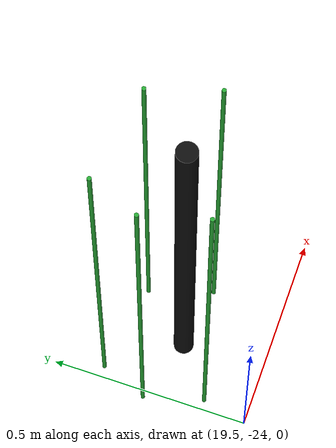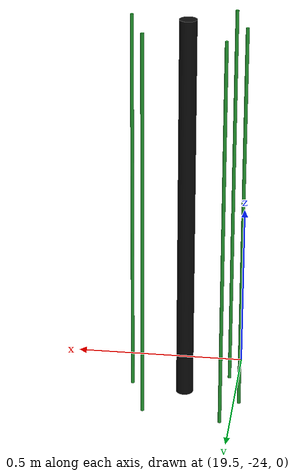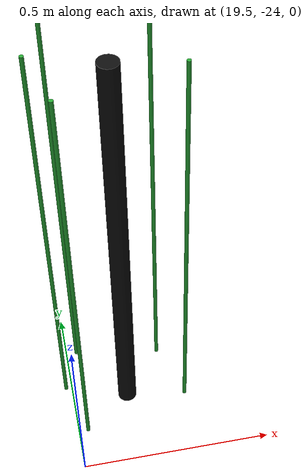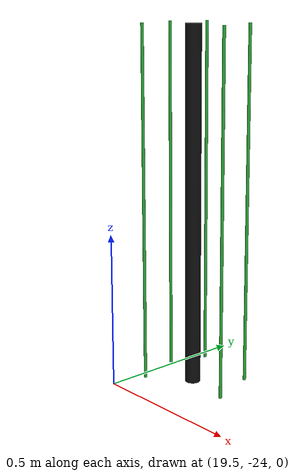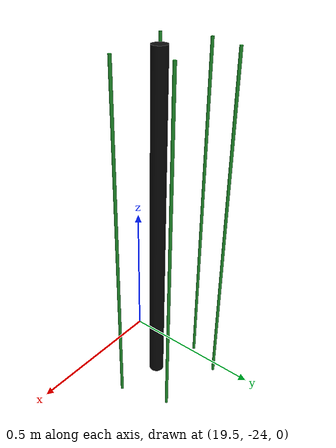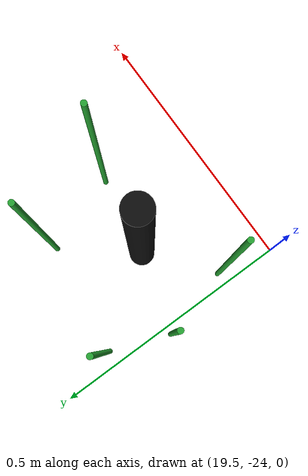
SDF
<sdf version="1.6">
 <world name="default">
  <model name="pole_22">
   <static>1</static>
   <pose>19.65 -23.79 0.575 0 -0 0</pose>
   <link name="link">
    <collision name="collision">
     <geometry><cylinder><length>1.15</length><radius>0.025</radius></cylinder></geometry>
    </collision>
    <visual name="visual">
     <geometry><cylinder><length>1.15</length><radius>0.025</radius></cylinder></geometry>
     <material>
      <script><uri>file://media/materials/scripts/gazebo.material</uri><name>Gazebo/Chrome</name></script>
      <shader type="vertex"><normal_map>__default__</normal_map></shader>
      <emissive>0.1 0.1 0.1 1</emissive>
      <specular>0.01 0.01 0.01 1</specular>
      <ambient>0.5 0.5 0.5 1</ambient>
      <diffuse>0.05 0.05 0.05 1</diffuse>
     </material>
    </visual>
   </link>
  </model>
  <model name="pole_27_clone_clone_35">
   <link name="link">
    <inertial>
     <mass>1</mass>
     <inertia><ixx>1</ixx><ixy>0</ixy><ixz>0</ixz><iyy>1</iyy><iyz>0</iyz><izz>1</izz></inertia>
    </inertial>
    <visual name="visual">
     <geometry><cylinder><length>1.15</length><radius>0.005</radius></cylinder></geometry>
     <material>
      <script><uri>file://media/materials/scripts/gazebo.material</uri><name>Gazebo/Green</name></script>
      <shader type="vertex"><normal_map>__default__</normal_map></shader>
      <emissive>0 0.1 0 1</emissive>
      <specular>0 0.01 0 1</specular>
      <ambient>0 0.5 0 1</ambient>
      <diffuse>0 0.05 0 1</diffuse>
     </material>
    </visual>
    <collision name="collision">
     <geometry><cylinder><radius>0.005</radius><length>1.15</length></cylinder></geometry>
     <surface>
      <friction>
       <ode><mu>1</mu><mu2>1</mu2><fdir1>0 0 0</fdir1><slip1>0</slip1><slip2>0</slip2></ode>
       <torsional>
        <coefficient>1</coefficient>
        <patch_radius>0</patch_radius>
        <surface_radius>0</surface_radius>
        <use_patch_radius>1</use_patch_radius>
        <ode><slip>0</slip></ode>
       </torsional>
      </friction>
      <bounce><restitution_coefficient>0</restitution_coefficient><threshold>1e+06</threshold></bounce>
      <contact>
       <collide_without_contact>0</collide_without_contact>
       <collide_without_contact_bitmask>1</collide_without_contact_bitmask>
       <collide_bitmask>1</collide_bitmask>
       <ode>
        <soft_cfm>0</soft_cfm>
        <soft_erp>0.2</soft_erp>
        <kp>1e+13</kp>
        <kd>1</kd>
        <max_vel>0.01</max_vel>
        <min_depth>0</min_depth>
       </ode>
       <bullet>
        <split_impulse>1</split_impulse>
        <split_impulse_penetration_threshold>-0.01</split_impulse_penetration_threshold>
        <soft_cfm>0</soft_cfm>
        <soft_erp>0.2</soft_erp>
        <kp>1e+13</kp>
        <kd>1</kd>
       </bullet>
      </contact>
     </surface>
    </collision>
   </link>
   <static>1</static>
   <pose>19.4843 -23.7386 0.575 0 -0 0</pose>
  </model>
  <model name="pole_27_clone_clone_36">
   <link name="link">
    <inertial>
     <mass>1</mass>
     <inertia><ixx>1</ixx><ixy>0</ixy><ixz>0</ixz><iyy>1</iyy><iyz>0</iyz><izz>1</izz></inertia>
    </inertial>
    <visual name="visual">
     <geometry><cylinder><length>1.15</length><radius>0.005</radius></cylinder></geometry>
     <material>
      <script><uri>file://media/materials/scripts/gazebo.material</uri><name>Gazebo/Green</name></script>
      <shader type="vertex"><normal_map>__default__</normal_map></shader>
      <emissive>0 0.1 0 1</emissive>
      <specular>0 0.01 0 1</specular>
      <ambient>0 0.5 0 1</ambient>
      <diffuse>0 0.05 0 1</diffuse>
     </material>
    </visual>
    <collision name="collision">
     <geometry><cylinder><radius>0.005</radius><length>1.15</length></cylinder></geometry>
     <surface>
      <friction>
       <ode><mu>1</mu><mu2>1</mu2><fdir1>0 0 0</fdir1><slip1>0</slip1><slip2>0</slip2></ode>
       <torsional>
        <coefficient>1</coefficient>
        <patch_radius>0</patch_radius>
        <surface_radius>0</surface_radius>
        <use_patch_radius>1</use_patch_radius>
        <ode><slip>0</slip></ode>
       </torsional>
      </friction>
      <bounce><restitution_coefficient>0</restitution_coefficient><threshold>1e+06</threshold></bounce>
      <contact>
       <collide_without_contact>0</collide_without_contact>
       <collide_without_contact_bitmask>1</collide_without_contact_bitmask>
       <collide_bitmask>1</collide_bitmask>
       <ode>
        <soft_cfm>0</soft_cfm>
        <soft_erp>0.2</soft_erp>
        <kp>1e+13</kp>
        <kd>1</kd>
        <max_vel>0.01</max_vel>
        <min_depth>0</min_depth>
       </ode>
       <bullet>
        <split_impulse>1</split_impulse>
        <split_impulse_penetration_threshold>-0.01</split_impulse_penetration_threshold>
        <soft_cfm>0</soft_cfm>
        <soft_erp>0.2</soft_erp>
        <kp>1e+13</kp>
        <kd>1</kd>
       </bullet>
      </contact>
     </surface>
    </collision>
   </link>
   <static>1</static>
   <pose>19.8084 -23.8171 0.575 0 -0 0</pose>
  </model>
  <model name="pole_27_clone_clone_37">
   <link name="link">
    <inertial>
     <mass>1</mass>
     <inertia><ixx>1</ixx><ixy>0</ixy><ixz>0</ixz><iyy>1</iyy><iyz>0</iyz><izz>1</izz></inertia>
    </inertial>
    <visual name="visual">
     <geometry><cylinder><length>1.15</length><radius>0.005</radius></cylinder></geometry>
     <material>
      <script><uri>file://media/materials/scripts/gazebo.material</uri><name>Gazebo/Green</name></script>
      <shader type="vertex"><normal_map>__default__</normal_map></shader>
      <emissive>0 0.1 0 1</emissive>
      <specular>0 0.01 0 1</specular>
      <ambient>0 0.5 0 1</ambient>
      <diffuse>0 0.05 0 1</diffuse>
     </material>
    </visual>
    <collision name="collision">
     <geometry><cylinder><radius>0.005</radius><length>1.15</length></cylinder></geometry>
     <surface>
      <friction>
       <ode><mu>1</mu><mu2>1</mu2><fdir1>0 0 0</fdir1><slip1>0</slip1><slip2>0</slip2></ode>
       <torsional>
        <coefficient>1</coefficient>
        <patch_radius>0</patch_radius>
        <surface_radius>0</surface_radius>
        <use_patch_radius>1</use_patch_radius>
        <ode><slip>0</slip></ode>
       </torsional>
      </friction>
      <bounce><restitution_coefficient>0</restitution_coefficient><threshold>1e+06</threshold></bounce>
      <contact>
       <collide_without_contact>0</collide_without_contact>
       <collide_without_contact_bitmask>1</collide_without_contact_bitmask>
       <collide_bitmask>1</collide_bitmask>
       <ode>
        <soft_cfm>0</soft_cfm>
        <soft_erp>0.2</soft_erp>
        <kp>1e+13</kp>
        <kd>1</kd>
        <max_vel>0.01</max_vel>
        <min_depth>0</min_depth>
       </ode>
       <bullet>
        <split_impulse>1</split_impulse>
        <split_impulse_penetration_threshold>-0.01</split_impulse_penetration_threshold>
        <soft_cfm>0</soft_cfm>
        <soft_erp>0.2</soft_erp>
        <kp>1e+13</kp>
        <kd>1</kd>
       </bullet>
      </contact>
     </surface>
    </collision>
   </link>
   <static>1</static>
   <pose>19.7581 -23.6585 0.575 0 -0 0</pose>
  </model>
  <model name="pole_27_clone_clone_38">
   <link name="link">
    <inertial>
     <mass>1</mass>
     <inertia><ixx>1</ixx><ixy>0</ixy><ixz>0</ixz><iyy>1</iyy><iyz>0</iyz><izz>1</izz></inertia>
    </inertial>
    <visual name="visual">
     <geometry><cylinder><length>1.15</length><radius>0.005</radius></cylinder></geometry>
     <material>
      <script><uri>file://media/materials/scripts/gazebo.material</uri><name>Gazebo/Green</name></script>
      <shader type="vertex"><normal_map>__default__</normal_map></shader>
      <emissive>0 0.1 0 1</emissive>
      <specular>0 0.01 0 1</specular>
      <ambient>0 0.5 0 1</ambient>
      <diffuse>0 0.05 0 1</diffuse>
     </material>
    </visual>
    <collision name="collision">
     <geometry><cylinder><radius>0.005</radius><length>1.15</length></cylinder></geometry>
     <surface>
      <friction>
       <ode><mu>1</mu><mu2>1</mu2><fdir1>0 0 0</fdir1><slip1>0</slip1><slip2>0</slip2></ode>
       <torsional>
        <coefficient>1</coefficient>
        <patch_radius>0</patch_radius>
        <surface_radius>0</surface_radius>
        <use_patch_radius>1</use_patch_radius>
        <ode><slip>0</slip></ode>
       </torsional>
      </friction>
      <bounce><restitution_coefficient>0</restitution_coefficient><threshold>1e+06</threshold></bounce>
      <contact>
       <collide_without_contact>0</collide_without_contact>
       <collide_without_contact_bitmask>1</collide_without_contact_bitmask>
       <collide_bitmask>1</collide_bitmask>
       <ode>
        <soft_cfm>0</soft_cfm>
        <soft_erp>0.2</soft_erp>
        <kp>1e+13</kp>
        <kd>1</kd>
        <max_vel>0.01</max_vel>
        <min_depth>0</min_depth>
       </ode>
       <bullet>
        <split_impulse>1</split_impulse>
        <split_impulse_penetration_threshold>-0.01</split_impulse_penetration_threshold>
        <soft_cfm>0</soft_cfm>
        <soft_erp>0.2</soft_erp>
        <kp>1e+13</kp>
        <kd>1</kd>
       </bullet>
      </contact>
     </surface>
    </collision>
   </link>
   <static>1</static>
   <pose>19.5293 -23.6207 0.575 0 -0 0</pose>
  </model>
  <model name="pole_27_clone_clone_39">
   <link name="link">
    <inertial>
     <mass>1</mass>
     <inertia><ixx>1</ixx><ixy>0</ixy><ixz>0</ixz><iyy>1</iyy><iyz>0</iyz><izz>1</izz></inertia>
    </inertial>
    <visual name="visual">
     <geometry><cylinder><length>1.15</length><radius>0.005</radius></cylinder></geometry>
     <material>
      <script><uri>file://media/materials/scripts/gazebo.material</uri><name>Gazebo/Green</name></script>
      <shader type="vertex"><normal_map>__default__</normal_map></shader>
      <emissive>0 0.1 0 1</emissive>
      <specular>0 0.01 0 1</specular>
      <ambient>0 0.5 0 1</ambient>
      <diffuse>0 0.05 0 1</diffuse>
     </material>
    </visual>
    <collision name="collision">
     <geometry><cylinder><radius>0.005</radius><length>1.15</length></cylinder></geometry>
     <surface>
      <friction>
       <ode><mu>1</mu><mu2>1</mu2><fdir1>0 0 0</fdir1><slip1>0</slip1><slip2>0</slip2></ode>
       <torsional>
        <coefficient>1</coefficient>
        <patch_radius>0</patch_radius>
        <surface_radius>0</surface_radius>
        <use_patch_radius>1</use_patch_radius>
        <ode><slip>0</slip></ode>
       </torsional>
      </friction>
      <bounce><restitution_coefficient>0</restitution_coefficient><threshold>1e+06</threshold></bounce>
      <contact>
       <collide_without_contact>0</collide_without_contact>
       <collide_without_contact_bitmask>1</collide_without_contact_bitmask>
       <collide_bitmask>1</collide_bitmask>
       <ode>
        <soft_cfm>0</soft_cfm>
        <soft_erp>0.2</soft_erp>
        <kp>1e+13</kp>
        <kd>1</kd>
        <max_vel>0.01</max_vel>
        <min_depth>0</min_depth>
       </ode>
       <bullet>
        <split_impulse>1</split_impulse>
        <split_impulse_penetration_threshold>-0.01</split_impulse_penetration_threshold>
        <soft_cfm>0</soft_cfm>
        <soft_erp>0.2</soft_erp>
        <kp>1e+13</kp>
        <kd>1</kd>
       </bullet>
      </contact>
     </surface>
    </collision>
   </link>
   <static>1</static>
   <pose>19.5253 -23.8869 0.575 0 -0 0</pose>
  </model>
 </world>
</sdf>
